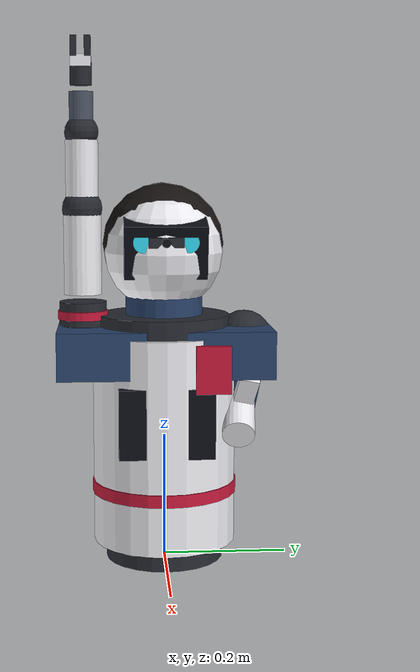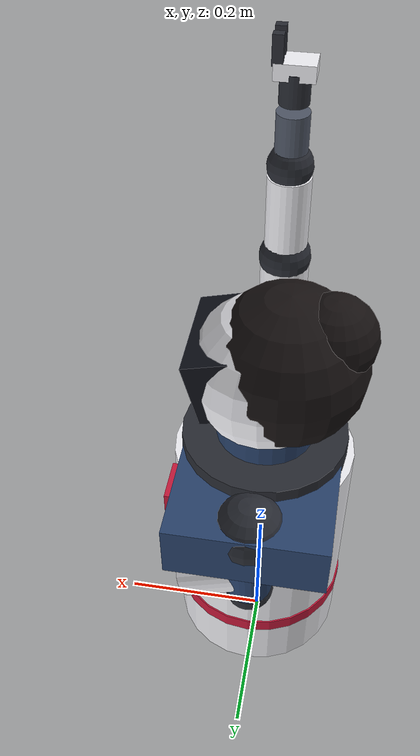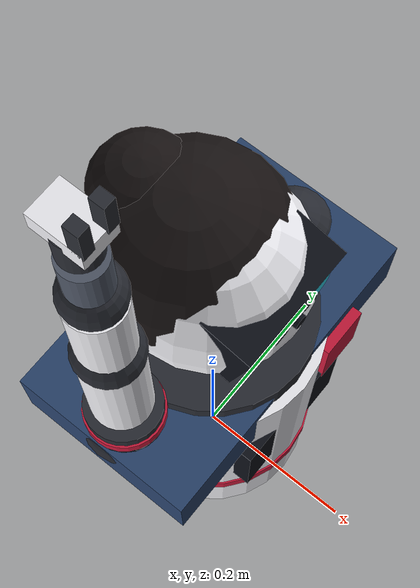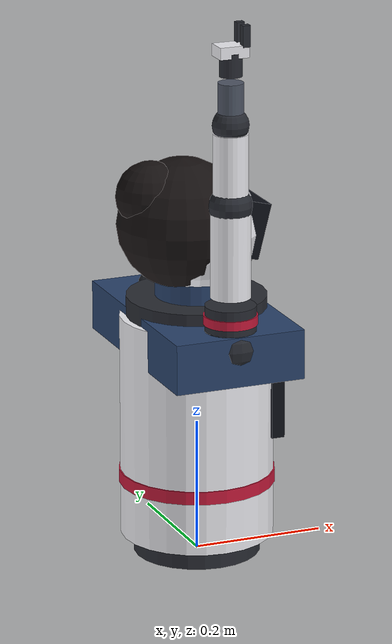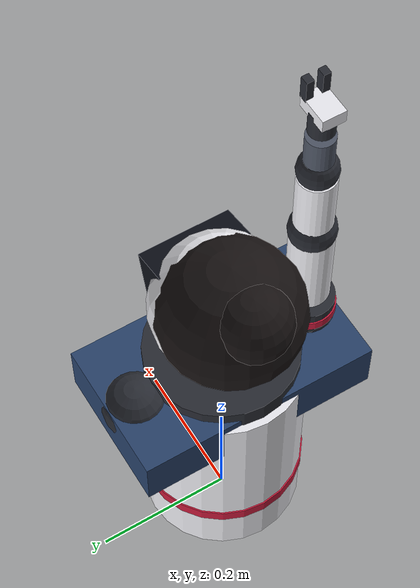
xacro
<?xml version="1.0"?>
<robot xmlns:xacro="http://www.ros.org/wiki/xacro" name="drona_humanoid">

  <xacro:arg name="use_gz_camera" default="false"/>
  <xacro:arg name="use_gz_control" default="false"/>
  <xacro:arg name="use_mobile_base" default="false"/>

  <!-- ── Materials ─────────────────────────────────────────────────────────── -->
  <material name="drona_shell">   <color rgba="0.94 0.94 0.96 1.0"/></material>
  <material name="drona_graphite"><color rgba="0.16 0.17 0.20 1.0"/></material>
  <material name="drona_slate">   <color rgba="0.31 0.34 0.40 1.0"/></material>
  <material name="drona_crimson"> <color rgba="0.78 0.10 0.23 1.0"/></material>
  <material name="drona_screen">  <color rgba="0.05 0.06 0.09 1.0"/></material>
  <material name="drona_eye">     <color rgba="0.20 0.85 0.95 1.0"/></material>
  <material name="drona_rubber">  <color rgba="0.10 0.10 0.12 1.0"/></material>
  <material name="drona_hair">    <color rgba="0.09 0.07 0.07 1.0"/></material>
  <material name="drona_attire">  <color rgba="0.16 0.26 0.42 1.0"/></material>
  <!-- Kept so any external xacro referencing the old names still resolves. -->
  <material name="drona_green">   <color rgba="0.94 0.94 0.96 1.0"/></material>
  <material name="drona_red">     <color rgba="0.94 0.94 0.96 1.0"/></material>
  <material name="drona_yellow">  <color rgba="0.31 0.34 0.40 1.0"/></material>
  <material name="drona_blue">    <color rgba="0.31 0.34 0.40 1.0"/></material>
  <material name="drona_skin">    <color rgba="0.94 0.94 0.96 1.0"/></material>

  <!-- Reusable inertial macro (small solid-ish box approximation). -->
  <xacro:macro name="box_inertial" params="mass">
    <inertial>
      <mass value="${mass}"/>
      <inertia ixx="${mass*0.002}" ixy="0" ixz="0"
               iyy="${mass*0.002}" iyz="0" izz="${mass*0.002}"/>
    </inertial>
  </xacro:macro>

  <!-- ── Torso (root) ──────────────────────────────────────────────────────── -->
  <link name="base_link">
    <visual>
      <origin xyz="0 0 0.20"/>
      <geometry><cylinder radius="0.115" length="0.34"/></geometry>
      <material name="drona_shell"/>
    </visual>
    <visual>  <!-- shoulder yoke -->
      <origin xyz="0 0 0.375"/>
      <geometry><cylinder radius="0.105" length="0.05"/></geometry>
      <material name="drona_graphite"/>
    </visual>
    <visual>  <!-- waist taper into the base -->
      <origin xyz="0 0 0.025"/>
      <geometry><cylinder radius="0.095" length="0.05"/></geometry>
      <material name="drona_graphite"/>
    </visual>
    <visual>  <!-- chest display: what a student reads at eye-in height -->
      <origin xyz="0.10 0 0.24"/>
      <geometry><box size="0.02 0.15 0.11"/></geometry>
      <material name="drona_screen"/>
    </visual>
    <visual>  <!-- accent band -->
      <origin xyz="0 0 0.12"/>
      <geometry><cylinder radius="0.117" length="0.02"/></geometry>
      <material name="drona_crimson"/>
    </visual>
    <collision>
      <origin xyz="0 0 0.20"/>
      <geometry><box size="0.22 0.14 0.40"/></geometry>
    </collision>
    <xacro:box_inertial mass="2.0"/>
  </link>

  <!-- Head (fixed) -->
  <link name="head_link">
    <visual>  <!-- cranial shell -->
      <geometry><sphere radius="0.095"/></geometry>
      <material name="drona_shell"/>
    </visual>
    <visual>  <!-- dark visor: gives the head a clear FRONT, so a student can
                   tell at a glance whether the robot is facing them -->
      <origin xyz="0.055 0 0.01" rpy="0 0.25 0"/>
      <geometry><box size="0.055 0.13 0.085"/></geometry>
      <material name="drona_screen"/>
    </visual>
    <visual>  <!-- eyes: emissive-looking, the main cue that it is awake -->
      <origin xyz="0.082 0.035 0.02" rpy="0 ${pi/2} 0"/>
      <geometry><cylinder radius="0.016" length="0.012"/></geometry>
      <material name="drona_eye"/>
    </visual>
    <visual>
      <origin xyz="0.082 -0.035 0.02" rpy="0 ${pi/2} 0"/>
      <geometry><cylinder radius="0.016" length="0.012"/></geometry>
      <material name="drona_eye"/>
    </visual>
    <visual>  <!-- neck collar -->
      <origin xyz="0 0 -0.075"/>
      <geometry><cylinder radius="0.045" length="0.05"/></geometry>
      <material name="drona_graphite"/>
    </visual>
    <collision><geometry><sphere radius="0.09"/></geometry></collision>
    <xacro:box_inertial mass="0.6"/>
  </link>
  <joint name="neck_fixed" type="fixed">
    <parent link="base_link"/>
    <child link="head_link"/>
    <origin xyz="0 0 0.50"/>
  </joint>

  <!-- Shoulder mount (fixed offset to the right shoulder) -->
  <link name="arm_base">
    <visual>
      <geometry><sphere radius="0.045"/></geometry>
      <material name="drona_graphite"/>
    </visual>
    <collision><geometry><cylinder radius="0.04" length="0.05"/></geometry></collision>
    <xacro:box_inertial mass="0.5"/>
  </link>
  <joint name="shoulder_fixed" type="fixed">
    <parent link="base_link"/>
    <child link="arm_base"/>
    <origin xyz="0 -0.13 0.36"/>
  </joint>

  <!-- ── j0: base yaw ─────────────────────────────────────────────────────── -->
  <link name="shoulder_link">
    <visual>
      <geometry><cylinder radius="0.038" length="0.042"/></geometry>
      <material name="drona_graphite"/>
    </visual>
    <visual>  <!-- crimson ring marks a driven axis -->
      <geometry><cylinder radius="0.040" length="0.014"/></geometry>
      <material name="drona_crimson"/>
    </visual>
    <collision><geometry><cylinder radius="0.035" length="0.04"/></geometry></collision>
    <xacro:box_inertial mass="0.3"/>
  </link>
  <joint name="j0_base_yaw" type="revolute">
    <parent link="arm_base"/>
    <child link="shoulder_link"/>
    <origin xyz="0 0 0.04"/>
    <axis xyz="0 0 1"/>
    <limit lower="-3.1416" upper="3.1416" effort="10" velocity="3.0"/>
  </joint>

  <!-- ── j1: shoulder pitch ───────────────────────────────────────────────── -->
  <link name="upper_arm">
    <visual>  <!-- upper-arm shell -->
      <origin xyz="0 0 0.078"/>
      <geometry><cylinder radius="0.030" length="0.13"/></geometry>
      <material name="drona_shell"/>
    </visual>
    <visual>  <!-- elbow joint cap -->
      <origin xyz="0 0 0.15"/>
      <geometry><sphere radius="0.032"/></geometry>
      <material name="drona_graphite"/>
    </visual>
    <collision>
      <origin xyz="0 0 0.075"/>
      <geometry><cylinder radius="0.025" length="0.15"/></geometry>
    </collision>
    <xacro:box_inertial mass="0.3"/>
  </link>
  <joint name="j1_shoulder" type="revolute">
    <parent link="shoulder_link"/>
    <child link="upper_arm"/>
    <origin xyz="0 0 0.02"/>
    <axis xyz="0 1 0"/>
    <limit lower="-1.5708" upper="1.5708" effort="10" velocity="3.0"/>
  </joint>

  <!-- ── j2: elbow ────────────────────────────────────────────────────────── -->
  <link name="forearm">
    <visual>  <!-- forearm shell -->
      <origin xyz="0 0 0.058"/>
      <geometry><cylinder radius="0.026" length="0.10"/></geometry>
      <material name="drona_shell"/>
    </visual>
    <visual>  <!-- wrist joint cap -->
      <origin xyz="0 0 0.12"/>
      <geometry><sphere radius="0.027"/></geometry>
      <material name="drona_graphite"/>
    </visual>
    <collision>
      <origin xyz="0 0 0.06"/>
      <geometry><cylinder radius="0.02" length="0.12"/></geometry>
    </collision>
    <xacro:box_inertial mass="0.2"/>
  </link>
  <joint name="j2_elbow" type="revolute">
    <parent link="upper_arm"/>
    <child link="forearm"/>
    <origin xyz="0 0 0.15"/>
    <axis xyz="0 1 0"/>
    <limit lower="-3.1416" upper="3.1416" effort="8" velocity="3.0"/>
  </joint>

  <!-- ── j3: wrist pitch ──────────────────────────────────────────────────── -->
  <link name="wrist_pitch_link">
    <visual>
      <origin xyz="0 0 0.033"/>
      <geometry><cylinder radius="0.019" length="0.06"/></geometry>
      <material name="drona_slate"/>
    </visual>
    <collision>
      <origin xyz="0 0 0.035"/>
      <geometry><cylinder radius="0.015" length="0.07"/></geometry>
    </collision>
    <xacro:box_inertial mass="0.1"/>
  </link>
  <joint name="j3_wrist_pitch" type="revolute">
    <parent link="forearm"/>
    <child link="wrist_pitch_link"/>
    <origin xyz="0 0 0.12"/>
    <axis xyz="0 1 0"/>
    <limit lower="-1.5708" upper="1.5708" effort="5" velocity="3.0"/>
  </joint>

  <!-- ── j4: wrist roll ───────────────────────────────────────────────────── -->
  <link name="wrist_roll_link">
    <visual>
      <origin xyz="0 0 0.02"/>
      <geometry><cylinder radius="0.017" length="0.035"/></geometry>
      <material name="drona_graphite"/>
    </visual>
    <collision>
      <origin xyz="0 0 0.02"/>
      <geometry><cylinder radius="0.012" length="0.04"/></geometry>
    </collision>
    <xacro:box_inertial mass="0.05"/>
  </link>
  <joint name="j4_wrist_roll" type="revolute">
    <parent link="wrist_pitch_link"/>
    <child link="wrist_roll_link"/>
    <origin xyz="0 0 0.07"/>
    <axis xyz="0 0 1"/>
    <limit lower="-3.1416" upper="3.1416" effort="5" velocity="3.0"/>
  </joint>

  <!-- ── j5: gripper (prismatic) ──────────────────────────────────────────── -->
  <link name="gripper_link">
    <visual>  <!-- palm -->
      <geometry><box size="0.045 0.032 0.018"/></geometry>
      <material name="drona_shell"/>
    </visual>
    <visual>  <!-- two fingers read as a hand; one block reads as a stump -->
      <origin xyz="0.018 0.011 0.022"/>
      <geometry><box size="0.012 0.010 0.032"/></geometry>
      <material name="drona_graphite"/>
    </visual>
    <visual>
      <origin xyz="0.018 -0.011 0.022"/>
      <geometry><box size="0.012 0.010 0.032"/></geometry>
      <material name="drona_graphite"/>
    </visual>
    <collision><geometry><box size="0.03 0.02 0.02"/></geometry></collision>
    <xacro:box_inertial mass="0.02"/>
  </link>
  <joint name="j5_gripper" type="prismatic">
    <parent link="wrist_roll_link"/>
    <child link="gripper_link"/>
    <origin xyz="0 0 0.04"/>
    <axis xyz="1 0 0"/>
    <limit lower="0.0" upper="1.0" effort="3" velocity="1.0"/>
  </joint>

  <!-- Hair: a darker mass behind and above the visor. This is the single cue
       that most strongly reads as "a person, and a woman" at a glance, which is
       what the counsellor framing needs. -->
  <link name="hair_back">
    <visual>
      <origin xyz="-0.022 0 0.012"/>
      <geometry><sphere radius="0.098"/></geometry>
      <material name="drona_hair"/>
    </visual>
    <xacro:box_inertial mass="0.01"/>
  </link>
  <joint name="hair_back_fixed" type="fixed">
    <parent link="head_link"/><child link="hair_back"/>
    <origin xyz="0 0 0"/>
  </joint>

  <link name="hair_bun">
    <visual>
      <geometry><sphere radius="0.052"/></geometry>
      <material name="drona_hair"/>
    </visual>
    <xacro:box_inertial mass="0.01"/>
  </link>
  <joint name="hair_bun_fixed" type="fixed">
    <parent link="head_link"/><child link="hair_bun"/>
    <origin xyz="-0.072 0 0.058"/>
  </joint>

  <!-- Shoulders / blazer line: squares off the torso into a professional
       silhouette instead of a bare cylinder. -->
  <link name="attire_shoulders">
    <visual>
      <geometry><box size="0.20 0.34 0.075"/></geometry>
      <material name="drona_attire"/>
    </visual>
    <xacro:box_inertial mass="0.02"/>
  </link>
  <joint name="attire_shoulders_fixed" type="fixed">
    <parent link="base_link"/><child link="attire_shoulders"/>
    <origin xyz="0 0 0.345"/>
  </joint>

  <link name="attire_collar">
    <visual>
      <geometry><cylinder radius="0.062" length="0.05"/></geometry>
      <material name="drona_attire"/>
    </visual>
    <xacro:box_inertial mass="0.01"/>
  </link>
  <joint name="attire_collar_fixed" type="fixed">
    <parent link="base_link"/><child link="attire_collar"/>
    <origin xyz="0 0 0.425"/>
  </joint>

  <!-- Staff badge: signals "counsellor", the way a real advisor wears one. -->
  <link name="staff_badge">
    <visual>
      <geometry><box size="0.012 0.055 0.075"/></geometry>
      <material name="drona_crimson"/>
    </visual>
    <xacro:box_inertial mass="0.005"/>
  </link>
  <joint name="staff_badge_fixed" type="fixed">
    <parent link="base_link"/><child link="staff_badge"/>
    <origin xyz="0.105 0.072 0.325"/>
  </joint>

  <link name="left_shoulder">
    <visual><geometry><sphere radius="0.045"/></geometry>
      <material name="drona_graphite"/></visual>
    <xacro:box_inertial mass="0.05"/>
  </link>
  <joint name="left_shoulder_fixed" type="fixed">
    <parent link="base_link"/><child link="left_shoulder"/>
    <origin xyz="0 0.13 0.36"/>
  </joint>

  <link name="left_upper_arm">
    <visual>
      <origin xyz="0 0 -0.078"/>
      <geometry><cylinder radius="0.030" length="0.13"/></geometry>
      <material name="drona_attire"/>
    </visual>
    <xacro:box_inertial mass="0.05"/>
  </link>
  <joint name="left_upper_arm_fixed" type="fixed">
    <parent link="left_shoulder"/><child link="left_upper_arm"/>
    <origin xyz="0 0.012 0" rpy="-0.20 0 0"/>
  </joint>

  <link name="left_elbow">
    <visual><geometry><sphere radius="0.032"/></geometry>
      <material name="drona_graphite"/></visual>
    <xacro:box_inertial mass="0.03"/>
  </link>
  <joint name="left_elbow_fixed" type="fixed">
    <parent link="left_upper_arm"/><child link="left_elbow"/>
    <origin xyz="0 0 -0.15"/>
  </joint>

  <link name="left_forearm">
    <visual>
      <origin xyz="0.045 0 -0.02"/>
      <geometry><cylinder radius="0.026" length="0.10"/></geometry>
      <material name="drona_shell"/>
    </visual>
    <xacro:box_inertial mass="0.04"/>
  </link>
  <joint name="left_forearm_fixed" type="fixed">
    <parent link="left_elbow"/><child link="left_forearm"/>
    <origin xyz="0 0 0" rpy="0 -1.05 0"/>
  </joint>

  <link name="left_hand">
    <visual><geometry><box size="0.045 0.032 0.018"/></geometry>
      <material name="drona_shell"/></visual>
    <xacro:box_inertial mass="0.02"/>
  </link>
  <joint name="left_hand_fixed" type="fixed">
    <parent link="left_forearm"/><child link="left_hand"/>
    <origin xyz="0.10 0 -0.02"/>
  </joint>

  <link name="camera_link">
    <visual>  <!-- camera housing, recessed into the visor -->
      <geometry><box size="0.012 0.055 0.016"/></geometry>
      <material name="drona_graphite"/>
    </visual>
    <visual>  <!-- lens -->
      <origin xyz="0.008 0 0" rpy="0 ${pi/2} 0"/>
      <geometry><cylinder radius="0.007" length="0.006"/></geometry>
      <material name="drona_screen"/>
    </visual>
    <collision><geometry><box size="0.02 0.05 0.02"/></geometry></collision>
    <xacro:box_inertial mass="0.02"/>
  </link>
  <joint name="camera_fixed" type="fixed">
    <parent link="head_link"/>
    <child link="camera_link"/>
    <origin xyz="0.085 0 0.02"/>
  </joint>

  <link name="camera_optical_frame"/>
  <joint name="camera_optical_fixed" type="fixed">
    <parent link="camera_link"/>
    <child link="camera_optical_frame"/>
    <origin xyz="0 0 0" rpy="${-pi/2} 0 ${-pi/2}"/>
  </joint>

  <!-- ── Gazebo camera sensor (sim only) ────────────────────────────────────── -->
  <xacro:if value="$(arg use_gz_camera)">
    <gazebo reference="camera_link">
      <sensor name="drona_head_camera" type="camera">
        <topic>drona/camera/image_raw</topic>
        <update_rate>15</update_rate>
        <always_on>1</always_on>
        <visualize>true</visualize>
        <gz_frame_id>camera_optical_frame</gz_frame_id>
        <camera>
          <horizontal_fov>1.204</horizontal_fov>
          <image><width>640</width><height>480</height><format>R8G8B8</format></image>
          <clip><near>0.05</near><far>10.0</far></clip>
          <camera_info_topic>drona/camera/camera_info</camera_info_topic>
        </camera>
      </sensor>
    </gazebo>
  </xacro:if>

  <xacro:if value="$(arg use_gz_control)">
    <gazebo>
      <plugin filename="gz-sim-joint-state-publisher-system"
              name="gz::sim::systems::JointStatePublisher"/>
      <xacro:macro name="gz_joint_pid" params="joint">
        <plugin filename="gz-sim-joint-position-controller-system"
                name="gz::sim::systems::JointPositionController">
          <joint_name>${joint}</joint_name>
          <topic>drona/gz/${joint}_cmd</topic>
          <p_gain>20.0</p_gain>
          <i_gain>0.5</i_gain>
          <d_gain>1.0</d_gain>
        </plugin>
      </xacro:macro>
      <xacro:gz_joint_pid joint="j0_base_yaw"/>
      <xacro:gz_joint_pid joint="j1_shoulder"/>
      <xacro:gz_joint_pid joint="j2_elbow"/>
      <xacro:gz_joint_pid joint="j3_wrist_pitch"/>
      <xacro:gz_joint_pid joint="j4_wrist_roll"/>
      <xacro:gz_joint_pid joint="j5_gripper"/>
    </gazebo>
  </xacro:if>

  <xacro:if value="$(arg use_mobile_base)">
    <xacro:property name="wheel_radius" value="0.075"/>
    <xacro:property name="wheel_sep"    value="0.34"/>
    <xacro:property name="chassis_h"    value="0.10"/>

    <link name="mobile_base_link">
      <visual>  <!-- rounded skirt: a cylinder reads as a service-robot base,
                      a bare box reads as a crate -->
        <origin xyz="0 0 ${chassis_h/2}"/>
        <geometry><cylinder radius="0.185" length="${chassis_h}"/></geometry>
        <material name="drona_shell"/>
      </visual>
      <visual>  <!-- dark bumper ring at floor level -->
        <origin xyz="0 0 0.022"/>
        <geometry><cylinder radius="0.192" length="0.032"/></geometry>
        <material name="drona_graphite"/>
      </visual>
      <visual>  <!-- top deck the torso sits on -->
        <origin xyz="0 0 ${chassis_h}"/>
        <geometry><cylinder radius="0.16" length="0.02"/></geometry>
        <material name="drona_graphite"/>
      </visual>
      <visual>  <!-- forward-facing sensor strip: shows which way is 'front' -->
        <origin xyz="0.17 0 ${chassis_h*0.7}"/>
        <geometry><box size="0.02 0.14 0.03"/></geometry>
        <material name="drona_screen"/>
      </visual>
      <collision>
        <origin xyz="0 0 ${chassis_h/2}"/>
        <geometry><box size="0.36 0.30 ${chassis_h}"/></geometry>
      </collision>
      <xacro:box_inertial mass="6.0"/>
    </link>

    <!-- Torso rides on the chassis; base_link stops being the root. -->
    <joint name="torso_mount" type="fixed">
      <parent link="mobile_base_link"/>
      <child link="base_link"/>
      <origin xyz="0 0 ${chassis_h}"/>
    </joint>

    <xacro:macro name="drive_wheel" params="name y_sign">
      <link name="${name}_wheel">
        <visual>
          <origin rpy="1.5708 0 0"/>
          <geometry><cylinder radius="${wheel_radius}" length="0.045"/></geometry>
          <material name="drona_rubber"/>
        </visual>
        <visual>  <!-- hub cap, so a rolling wheel is visibly rolling -->
          <origin rpy="1.5708 0 0"/>
          <geometry><cylinder radius="${wheel_radius*0.45}" length="0.048"/></geometry>
          <material name="drona_slate"/>
        </visual>
        <collision>
          <origin rpy="1.5708 0 0"/>
          <geometry><cylinder radius="${wheel_radius}" length="0.04"/></geometry>
        </collision>
        <xacro:box_inertial mass="0.6"/>
      </link>
      <joint name="${name}_wheel_joint" type="continuous">
        <parent link="mobile_base_link"/>
        <child link="${name}_wheel"/>
        <origin xyz="0 ${y_sign*wheel_sep/2} 0"/>
        <axis xyz="0 1 0"/>
      </joint>
    </xacro:macro>
    <xacro:drive_wheel name="left"  y_sign="1"/>
    <xacro:drive_wheel name="right" y_sign="-1"/>

    <!-- Front caster: a low-friction sphere so the chassis is statically stable
         without needing a third driven wheel. -->
    <link name="caster">
      <visual><geometry><sphere radius="0.03"/></geometry></visual>
      <collision>
        <geometry><sphere radius="0.03"/></geometry>
        <surface><friction><ode><mu>0.0</mu><mu2>0.0</mu2></ode></friction></surface>
      </collision>
      <xacro:box_inertial mass="0.2"/>
    </link>
    <joint name="caster_joint" type="fixed">
      <parent link="mobile_base_link"/>
      <child link="caster"/>
      <origin xyz="0.14 0 ${-(wheel_radius-0.03)}"/>
    </joint>

    <gazebo reference="caster">
      <mu1>0.0</mu1><mu2>0.0</mu2>
    </gazebo>

    <gazebo>
      <plugin filename="gz-sim-diff-drive-system" name="gz::sim::systems::DiffDrive">
        <left_joint>left_wheel_joint</left_joint>
        <right_joint>right_wheel_joint</right_joint>
        <wheel_separation>${wheel_sep}</wheel_separation>
        <wheel_radius>${wheel_radius}</wheel_radius>
        <topic>cmd_vel</topic>
        <odom_topic>odom</odom_topic>
        <tf_topic>/model/drona_humanoid/tf</tf_topic>
        <frame_id>odom</frame_id>
        <child_frame_id>mobile_base_link</child_frame_id>
        <odom_publish_frequency>30</odom_publish_frequency>
        <max_linear_acceleration>1.0</max_linear_acceleration>
      </plugin>
    </gazebo>
  </xacro:if>

</robot>
